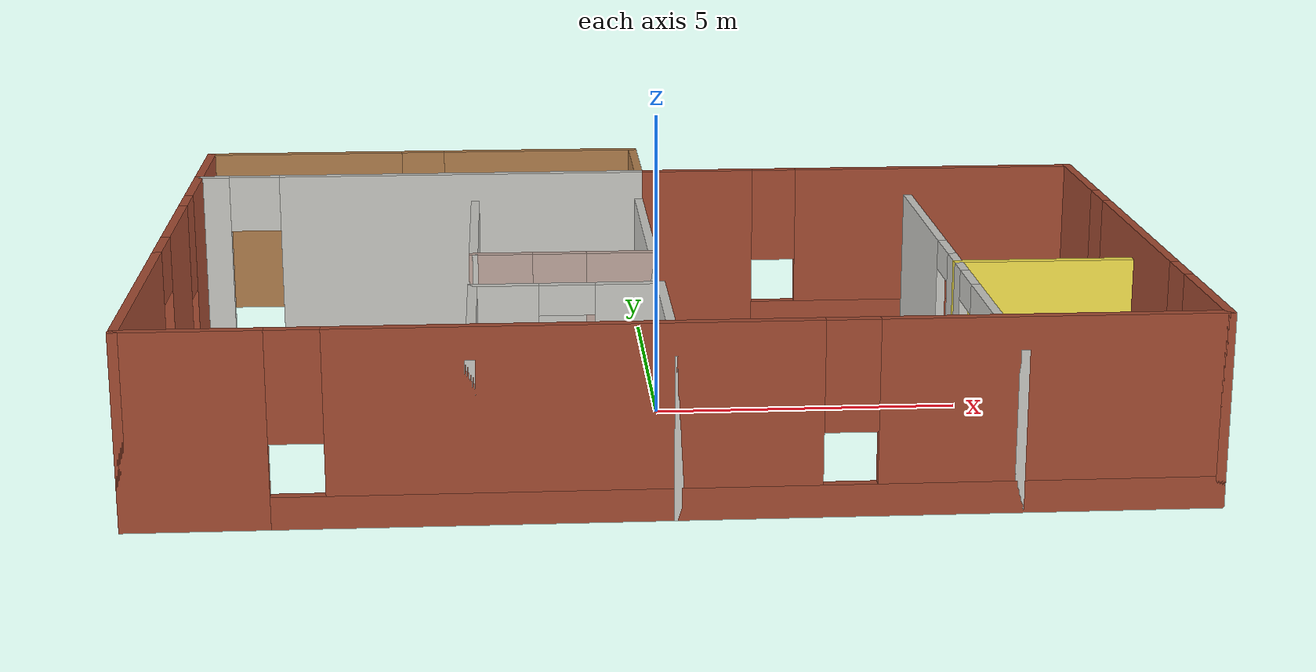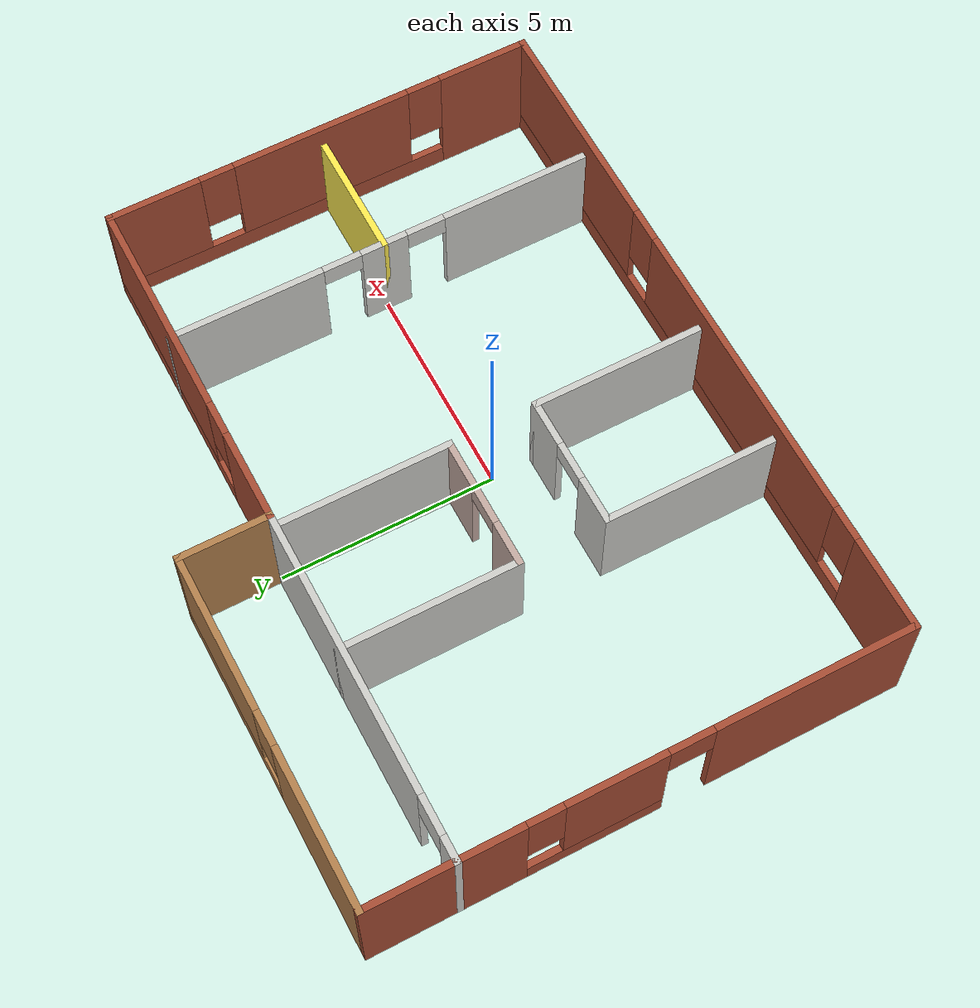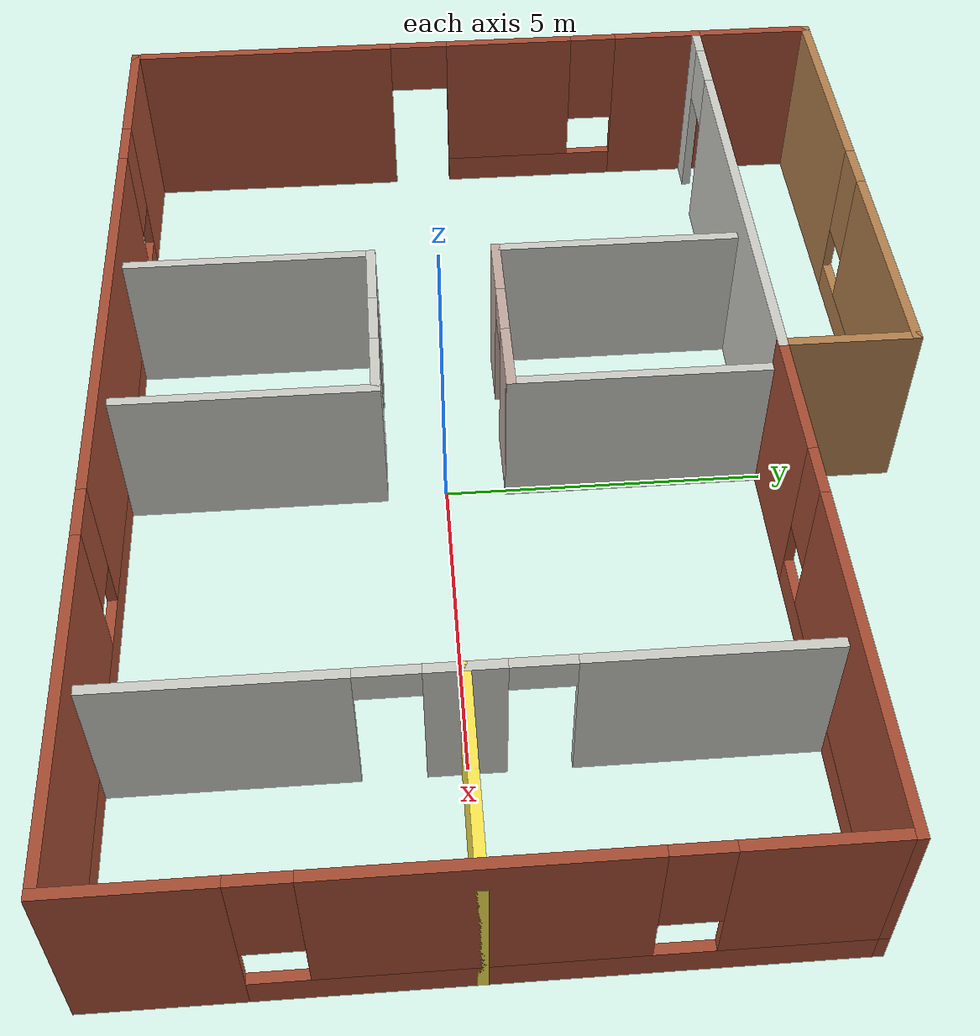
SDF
<?xml version='1.0'?>
<sdf version='1.7'>
  <model name='Project_building'>
    <pose>0 1 0 0 -0 0</pose>
    <link name='Wall_0'>
      <pose>-8 -1 0 0 -0 -1.5708</pose>
      <visual name='Wall_0_Visual_0'>
        <pose>-4.30639 0 1.5 0 -0 0</pose>
        <geometry>
          <box>
            <size>1.53722 0.15 3</size>
          </box>
        </geometry>
        <material>
          <script>
            <uri>file://media/materials/scripts/gazebo.material</uri>
            <name>Gazebo/Bricks</name>
          </script>
          <ambient>1 1 1 1</ambient>
        </material>
        <meta>
          <layer>0</layer>
        </meta>
      </visual>
      <collision name='Wall_0_Collision_0'>
        <geometry>
          <box>
            <size>1.53722 0.15 3</size>
          </box>
        </geometry>
        <pose>-4.30639 0 1.5 0 -0 0</pose>
      </collision>
      <visual name='Wall_0_Visual_1'>
        <pose>2.7875 0 1.5 0 -0 0</pose>
        <geometry>
          <box>
            <size>4.575 0.15 3</size>
          </box>
        </geometry>
        <material>
          <script>
            <uri>file://media/materials/scripts/gazebo.material</uri>
            <name>Gazebo/Bricks</name>
          </script>
          <ambient>1 1 1 1</ambient>
        </material>
        <meta>
          <layer>0</layer>
        </meta>
      </visual>
      <collision name='Wall_0_Collision_1'>
        <geometry>
          <box>
            <size>4.575 0.15 3</size>
          </box>
        </geometry>
        <pose>2.7875 0 1.5 0 -0 0</pose>
      </collision>
      <visual name='Wall_0_Visual_2'>
        <pose>-2.01889 0 0.25 0 -0 0</pose>
        <geometry>
          <box>
            <size>3.03778 0.15 0.5</size>
          </box>
        </geometry>
        <material>
          <script>
            <uri>file://media/materials/scripts/gazebo.material</uri>
            <name>Gazebo/Bricks</name>
          </script>
          <ambient>1 1 1 1</ambient>
        </material>
        <meta>
          <layer>0</layer>
        </meta>
      </visual>
      <collision name='Wall_0_Collision_2'>
        <geometry>
          <box>
            <size>3.03778 0.15 0.5</size>
          </box>
        </geometry>
        <pose>-2.01889 0 0.25 0 -0 0</pose>
      </collision>
      <visual name='Wall_0_Visual_3'>
        <pose>-1.61889 0 1.75 0 -0 0</pose>
        <geometry>
          <box>
            <size>2.23778 0.15 2.5</size>
          </box>
        </geometry>
        <material>
          <script>
            <uri>file://media/materials/scripts/gazebo.material</uri>
            <name>Gazebo/Bricks</name>
          </script>
          <ambient>1 1 1 1</ambient>
        </material>
        <meta>
          <layer>0</layer>
        </meta>
      </visual>
      <collision name='Wall_0_Collision_3'>
        <geometry>
          <box>
            <size>2.23778 0.15 2.5</size>
          </box>
        </geometry>
        <pose>-1.61889 0 1.75 0 -0 0</pose>
      </collision>
      <visual name='Wall_0_Visual_4'>
        <pose>-3.13778 0 2.15 0 -0 0</pose>
        <geometry>
          <box>
            <size>0.8 0.15 1.7</size>
          </box>
        </geometry>
        <material>
          <script>
            <uri>file://media/materials/scripts/gazebo.material</uri>
            <name>Gazebo/Bricks</name>
          </script>
          <ambient>1 1 1 1</ambient>
        </material>
        <meta>
          <layer>0</layer>
        </meta>
      </visual>
      <collision name='Wall_0_Collision_4'>
        <geometry>
          <box>
            <size>0.8 0.15 1.7</size>
          </box>
        </geometry>
        <pose>-3.13778 0 2.15 0 -0 0</pose>
      </collision>
      <visual name='Wall_0_Visual_5'>
        <pose>0 0 2.55 0 -0 0</pose>
        <geometry>
          <box>
            <size>1 0.15 0.9</size>
          </box>
        </geometry>
        <material>
          <script>
            <uri>file://media/materials/scripts/gazebo.material</uri>
            <name>Gazebo/Bricks</name>
          </script>
          <ambient>1 1 1 1</ambient>
        </material>
        <meta>
          <layer>0</layer>
        </meta>
      </visual>
      <collision name='Wall_0_Collision_5'>
        <geometry>
          <box>
            <size>1 0.15 0.9</size>
          </box>
        </geometry>
        <pose>0 0 2.55 0 -0 0</pose>
      </collision>
    </link>
    <link name='Wall_1'>
      <pose>0 -6 0 0 -0 0</pose>
      <visual name='Wall_1_Visual_0'>
        <pose>-6.9875 0 1.5 0 -0 0</pose>
        <geometry>
          <box>
            <size>2.175 0.15 3</size>
          </box>
        </geometry>
        <material>
          <script>
            <uri>file://media/materials/scripts/gazebo.material</uri>
            <name>Gazebo/Bricks</name>
          </script>
          <ambient>1 1 1 1</ambient>
        </material>
        <meta>
          <layer>0</layer>
        </meta>
      </visual>
      <collision name='Wall_1_Collision_0'>
        <geometry>
          <box>
            <size>2.175 0.15 3</size>
          </box>
        </geometry>
        <pose>-6.9875 0 1.5 0 -0 0</pose>
      </collision>
      <visual name='Wall_1_Visual_1'>
        <pose>1.0875 0 0.25 0 -0 0</pose>
        <geometry>
          <box>
            <size>13.975 0.15 0.5</size>
          </box>
        </geometry>
        <material>
          <script>
            <uri>file://media/materials/scripts/gazebo.material</uri>
            <name>Gazebo/Bricks</name>
          </script>
          <ambient>1 1 1 1</ambient>
        </material>
        <meta>
          <layer>0</layer>
        </meta>
      </visual>
      <collision name='Wall_1_Collision_1'>
        <geometry>
          <box>
            <size>13.975 0.15 0.5</size>
          </box>
        </geometry>
        <pose>1.0875 0 0.25 0 -0 0</pose>
      </collision>
      <visual name='Wall_1_Visual_2'>
        <pose>-1.5 0 1.75 0 -0 0</pose>
        <geometry>
          <box>
            <size>7.2 0.15 2.5</size>
          </box>
        </geometry>
        <material>
          <script>
            <uri>file://media/materials/scripts/gazebo.material</uri>
            <name>Gazebo/Bricks</name>
          </script>
          <ambient>1 1 1 1</ambient>
        </material>
        <meta>
          <layer>0</layer>
        </meta>
      </visual>
      <collision name='Wall_1_Collision_2'>
        <geometry>
          <box>
            <size>7.2 0.15 2.5</size>
          </box>
        </geometry>
        <pose>-1.5 0 1.75 0 -0 0</pose>
      </collision>
      <visual name='Wall_1_Visual_3'>
        <pose>5.4875 0 1.75 0 -0 0</pose>
        <geometry>
          <box>
            <size>5.175 0.15 2.5</size>
          </box>
        </geometry>
        <material>
          <script>
            <uri>file://media/materials/scripts/gazebo.material</uri>
            <name>Gazebo/Bricks</name>
          </script>
          <ambient>1 1 1 1</ambient>
        </material>
        <meta>
          <layer>0</layer>
        </meta>
      </visual>
      <collision name='Wall_1_Collision_3'>
        <geometry>
          <box>
            <size>5.175 0.15 2.5</size>
          </box>
        </geometry>
        <pose>5.4875 0 1.75 0 -0 0</pose>
      </collision>
      <visual name='Wall_1_Visual_4'>
        <pose>-5.5 0 2.15 0 -0 0</pose>
        <geometry>
          <box>
            <size>0.8 0.15 1.7</size>
          </box>
        </geometry>
        <material>
          <script>
            <uri>file://media/materials/scripts/gazebo.material</uri>
            <name>Gazebo/Bricks</name>
          </script>
          <ambient>1 1 1 1</ambient>
        </material>
        <meta>
          <layer>0</layer>
        </meta>
      </visual>
      <collision name='Wall_1_Collision_4'>
        <geometry>
          <box>
            <size>0.8 0.15 1.7</size>
          </box>
        </geometry>
        <pose>-5.5 0 2.15 0 -0 0</pose>
      </collision>
      <visual name='Wall_1_Visual_5'>
        <pose>2.5 0 2.15 0 -0 0</pose>
        <geometry>
          <box>
            <size>0.8 0.15 1.7</size>
          </box>
        </geometry>
        <material>
          <script>
            <uri>file://media/materials/scripts/gazebo.material</uri>
            <name>Gazebo/Bricks</name>
          </script>
          <ambient>1 1 1 1</ambient>
        </material>
        <meta>
          <layer>0</layer>
        </meta>
      </visual>
      <collision name='Wall_1_Collision_5'>
        <geometry>
          <box>
            <size>0.8 0.15 1.7</size>
          </box>
        </geometry>
        <pose>2.5 0 2.15 0 -0 0</pose>
      </collision>
    </link>
    <link name='Wall_10'>
      <pose>-1.5 0 0 0 -0 0</pose>
      <visual name='Wall_10_Visual_0'>
        <pose>-1.04354 0 1.25 0 -0 0</pose>
        <geometry>
          <box>
            <size>1.06292 0.15 2.5</size>
          </box>
        </geometry>
        <material>
          <script>
            <uri>file://media/materials/scripts/gazebo.material</uri>
            <name>Gazebo/Grey</name>
          </script>
          <ambient>0.760784 0.662745 0.627451 1</ambient>
        </material>
        <meta>
          <layer>0</layer>
        </meta>
      </visual>
      <collision name='Wall_10_Collision_0'>
        <geometry>
          <box>
            <size>1.06292 0.15 2.5</size>
          </box>
        </geometry>
        <pose>-1.04354 0 1.25 0 -0 0</pose>
      </collision>
      <visual name='Wall_10_Visual_1'>
        <pose>0.981459 0 1.25 0 -0 0</pose>
        <geometry>
          <box>
            <size>1.18708 0.15 2.5</size>
          </box>
        </geometry>
        <material>
          <script>
            <uri>file://media/materials/scripts/gazebo.material</uri>
            <name>Gazebo/Grey</name>
          </script>
          <ambient>0.760784 0.662745 0.627451 1</ambient>
        </material>
        <meta>
          <layer>0</layer>
        </meta>
      </visual>
      <collision name='Wall_10_Collision_1'>
        <geometry>
          <box>
            <size>1.18708 0.15 2.5</size>
          </box>
        </geometry>
        <pose>0.981459 0 1.25 0 -0 0</pose>
      </collision>
      <visual name='Wall_10_Visual_2'>
        <pose>-0.062083 0 2.25 0 -0 0</pose>
        <geometry>
          <box>
            <size>0.9 0.15 0.5</size>
          </box>
        </geometry>
        <material>
          <script>
            <uri>file://media/materials/scripts/gazebo.material</uri>
            <name>Gazebo/Grey</name>
          </script>
          <ambient>0.760784 0.662745 0.627451 1</ambient>
        </material>
        <meta>
          <layer>0</layer>
        </meta>
      </visual>
      <collision name='Wall_10_Collision_2'>
        <geometry>
          <box>
            <size>0.9 0.15 0.5</size>
          </box>
        </geometry>
        <pose>-0.062083 0 2.25 0 -0 0</pose>
      </collision>
    </link>
    <link name='Wall_11'>
      <collision name='Wall_11_Collision'>
        <geometry>
          <box>
            <size>4.15 0.15 2.5</size>
          </box>
        </geometry>
        <pose>0 0 1.25 0 -0 0</pose>
      </collision>
      <visual name='Wall_11_Visual'>
        <pose>0 0 1.25 0 -0 0</pose>
        <geometry>
          <box>
            <size>4.15 0.15 2.5</size>
          </box>
        </geometry>
        <material>
          <script>
            <uri>file://media/materials/scripts/gazebo.material</uri>
            <name>Gazebo/CeilingTiled</name>
          </script>
          <ambient>0.760784 0.662745 0.627451 1</ambient>
        </material>
        <meta>
          <layer>0</layer>
        </meta>
      </visual>
      <pose>0 2 0 0 -0 1.5708</pose>
    </link>
    <link name='Wall_13'>
      <collision name='Wall_13_Collision'>
        <geometry>
          <box>
            <size>4.15 0.15 2.5</size>
          </box>
        </geometry>
        <pose>0 0 1.25 0 -0 0</pose>
      </collision>
      <visual name='Wall_13_Visual'>
        <pose>0 0 1.25 0 -0 0</pose>
        <geometry>
          <box>
            <size>4.15 0.15 2.5</size>
          </box>
        </geometry>
        <material>
          <script>
            <uri>file://media/materials/scripts/gazebo.material</uri>
            <name>Gazebo/CeilingTiled</name>
          </script>
          <ambient>0.760784 0.662745 0.627451 1</ambient>
        </material>
        <meta>
          <layer>0</layer>
        </meta>
      </visual>
      <pose>-3 -4 0 0 -0 1.5708</pose>
    </link>
    <link name='Wall_14'>
      <pose>-1.5 -2 0 0 -0 0</pose>
      <visual name='Wall_14_Visual_0'>
        <pose>-1.0125 0 1.25 0 -0 0</pose>
        <geometry>
          <box>
            <size>1.125 0.15 2.5</size>
          </box>
        </geometry>
        <material>
          <script>
            <uri>file://media/materials/scripts/gazebo.material</uri>
            <name>Gazebo/CeilingTiled</name>
          </script>
          <ambient>0.760784 0.662745 0.627451 1</ambient>
        </material>
        <meta>
          <layer>0</layer>
        </meta>
      </visual>
      <collision name='Wall_14_Collision_0'>
        <geometry>
          <box>
            <size>1.125 0.15 2.5</size>
          </box>
        </geometry>
        <pose>-1.0125 0 1.25 0 -0 0</pose>
      </collision>
      <visual name='Wall_14_Visual_1'>
        <pose>1.0125 0 1.25 0 -0 0</pose>
        <geometry>
          <box>
            <size>1.125 0.15 2.5</size>
          </box>
        </geometry>
        <material>
          <script>
            <uri>file://media/materials/scripts/gazebo.material</uri>
            <name>Gazebo/CeilingTiled</name>
          </script>
          <ambient>0.760784 0.662745 0.627451 1</ambient>
        </material>
        <meta>
          <layer>0</layer>
        </meta>
      </visual>
      <collision name='Wall_14_Collision_1'>
        <geometry>
          <box>
            <size>1.125 0.15 2.5</size>
          </box>
        </geometry>
        <pose>1.0125 0 1.25 0 -0 0</pose>
      </collision>
      <visual name='Wall_14_Visual_2'>
        <pose>0 0 2.25 0 -0 0</pose>
        <geometry>
          <box>
            <size>0.9 0.15 0.5</size>
          </box>
        </geometry>
        <material>
          <script>
            <uri>file://media/materials/scripts/gazebo.material</uri>
            <name>Gazebo/CeilingTiled</name>
          </script>
          <ambient>0.760784 0.662745 0.627451 1</ambient>
        </material>
        <meta>
          <layer>0</layer>
        </meta>
      </visual>
      <collision name='Wall_14_Collision_2'>
        <geometry>
          <box>
            <size>0.9 0.15 0.5</size>
          </box>
        </geometry>
        <pose>0 0 2.25 0 -0 0</pose>
      </collision>
    </link>
    <link name='Wall_15'>
      <collision name='Wall_15_Collision'>
        <geometry>
          <box>
            <size>4.15 0.15 2.5</size>
          </box>
        </geometry>
        <pose>0 0 1.25 0 -0 0</pose>
      </collision>
      <visual name='Wall_15_Visual'>
        <pose>0 0 1.25 0 -0 0</pose>
        <geometry>
          <box>
            <size>4.15 0.15 2.5</size>
          </box>
        </geometry>
        <material>
          <script>
            <uri>file://media/materials/scripts/gazebo.material</uri>
            <name>Gazebo/CeilingTiled</name>
          </script>
          <ambient>0.760784 0.662745 0.627451 1</ambient>
        </material>
        <meta>
          <layer>0</layer>
        </meta>
      </visual>
      <pose>0 -4 0 0 -0 -1.5708</pose>
    </link>
    <link name='Wall_18'>
      <collision name='Wall_18_Collision'>
        <geometry>
          <box>
            <size>2.15 0.15 3</size>
          </box>
        </geometry>
        <pose>0 0 1.5 0 -0 0</pose>
      </collision>
      <visual name='Wall_18_Visual'>
        <pose>0 0 1.5 0 -0 0</pose>
        <geometry>
          <box>
            <size>2.15 0.15 3</size>
          </box>
        </geometry>
        <material>
          <script>
            <uri>file://media/materials/scripts/gazebo.material</uri>
            <name>Gazebo/Bricks</name>
          </script>
          <ambient>1 1 1 1</ambient>
        </material>
        <meta>
          <layer>0</layer>
        </meta>
      </visual>
      <pose>-8 5 0 0 -0 1.5708</pose>
    </link>
    <link name='Wall_19'>
      <pose>-4 6 0 0 -0 0</pose>
      <visual name='Wall_19_Visual_0'>
        <pose>-2.2375 0 1.5 0 -0 0</pose>
        <geometry>
          <box>
            <size>3.675 0.15 3</size>
          </box>
        </geometry>
        <material>
          <script>
            <uri>file://media/materials/scripts/gazebo.material</uri>
            <name>Gazebo/Wood</name>
          </script>
          <ambient>1 1 1 1</ambient>
        </material>
        <meta>
          <layer>0</layer>
        </meta>
      </visual>
      <collision name='Wall_19_Collision_0'>
        <geometry>
          <box>
            <size>3.675 0.15 3</size>
          </box>
        </geometry>
        <pose>-2.2375 0 1.5 0 -0 0</pose>
      </collision>
      <visual name='Wall_19_Visual_1'>
        <pose>1.8375 0 0.25 0 -0 0</pose>
        <geometry>
          <box>
            <size>4.475 0.15 0.5</size>
          </box>
        </geometry>
        <material>
          <script>
            <uri>file://media/materials/scripts/gazebo.material</uri>
            <name>Gazebo/Wood</name>
          </script>
          <ambient>1 1 1 1</ambient>
        </material>
        <meta>
          <layer>0</layer>
        </meta>
      </visual>
      <collision name='Wall_19_Collision_1'>
        <geometry>
          <box>
            <size>4.475 0.15 0.5</size>
          </box>
        </geometry>
        <pose>1.8375 0 0.25 0 -0 0</pose>
      </collision>
      <visual name='Wall_19_Visual_2'>
        <pose>2.2375 0 1.75 0 -0 0</pose>
        <geometry>
          <box>
            <size>3.675 0.15 2.5</size>
          </box>
        </geometry>
        <material>
          <script>
            <uri>file://media/materials/scripts/gazebo.material</uri>
            <name>Gazebo/Wood</name>
          </script>
          <ambient>1 1 1 1</ambient>
        </material>
        <meta>
          <layer>0</layer>
        </meta>
      </visual>
      <collision name='Wall_19_Collision_2'>
        <geometry>
          <box>
            <size>3.675 0.15 2.5</size>
          </box>
        </geometry>
        <pose>2.2375 0 1.75 0 -0 0</pose>
      </collision>
      <visual name='Wall_19_Visual_3'>
        <pose>0 0 2.15 0 -0 0</pose>
        <geometry>
          <box>
            <size>0.8 0.15 1.7</size>
          </box>
        </geometry>
        <material>
          <script>
            <uri>file://media/materials/scripts/gazebo.material</uri>
            <name>Gazebo/Wood</name>
          </script>
          <ambient>1 1 1 1</ambient>
        </material>
        <meta>
          <layer>0</layer>
        </meta>
      </visual>
      <collision name='Wall_19_Collision_3'>
        <geometry>
          <box>
            <size>0.8 0.15 1.7</size>
          </box>
        </geometry>
        <pose>0 0 2.15 0 -0 0</pose>
      </collision>
    </link>
    <link name='Wall_2'>
      <pose>8 -1 0 0 -0 1.5708</pose>
      <visual name='Wall_2_Visual_0'>
        <pose>-3.9875 0 1.5 0 -0 0</pose>
        <geometry>
          <box>
            <size>2.175 0.15 3</size>
          </box>
        </geometry>
        <material>
          <script>
            <uri>file://media/materials/scripts/gazebo.material</uri>
            <name>Gazebo/Bricks</name>
          </script>
          <ambient>1 1 1 1</ambient>
        </material>
        <meta>
          <layer>0</layer>
        </meta>
      </visual>
      <collision name='Wall_2_Collision_0'>
        <geometry>
          <box>
            <size>2.175 0.15 3</size>
          </box>
        </geometry>
        <pose>-3.9875 0 1.5 0 -0 0</pose>
      </collision>
      <visual name='Wall_2_Visual_1'>
        <pose>1.0875 0 0.25 0 -0 0</pose>
        <geometry>
          <box>
            <size>7.975 0.15 0.5</size>
          </box>
        </geometry>
        <material>
          <script>
            <uri>file://media/materials/scripts/gazebo.material</uri>
            <name>Gazebo/Bricks</name>
          </script>
          <ambient>1 1 1 1</ambient>
        </material>
        <meta>
          <layer>0</layer>
        </meta>
      </visual>
      <collision name='Wall_2_Collision_1'>
        <geometry>
          <box>
            <size>7.975 0.15 0.5</size>
          </box>
        </geometry>
        <pose>1.0875 0 0.25 0 -0 0</pose>
      </collision>
      <visual name='Wall_2_Visual_2'>
        <pose>0 0 1.75 0 -0 0</pose>
        <geometry>
          <box>
            <size>4.2 0.15 2.5</size>
          </box>
        </geometry>
        <material>
          <script>
            <uri>file://media/materials/scripts/gazebo.material</uri>
            <name>Gazebo/Bricks</name>
          </script>
          <ambient>1 1 1 1</ambient>
        </material>
        <meta>
          <layer>0</layer>
        </meta>
      </visual>
      <collision name='Wall_2_Collision_2'>
        <geometry>
          <box>
            <size>4.2 0.15 2.5</size>
          </box>
        </geometry>
        <pose>0 0 1.75 0 -0 0</pose>
      </collision>
      <visual name='Wall_2_Visual_3'>
        <pose>3.9875 0 1.75 0 -0 0</pose>
        <geometry>
          <box>
            <size>2.175 0.15 2.5</size>
          </box>
        </geometry>
        <material>
          <script>
            <uri>file://media/materials/scripts/gazebo.material</uri>
            <name>Gazebo/Bricks</name>
          </script>
          <ambient>1 1 1 1</ambient>
        </material>
        <meta>
          <layer>0</layer>
        </meta>
      </visual>
      <collision name='Wall_2_Collision_3'>
        <geometry>
          <box>
            <size>2.175 0.15 2.5</size>
          </box>
        </geometry>
        <pose>3.9875 0 1.75 0 -0 0</pose>
      </collision>
      <visual name='Wall_2_Visual_4'>
        <pose>-2.5 0 2.15 0 -0 0</pose>
        <geometry>
          <box>
            <size>0.8 0.15 1.7</size>
          </box>
        </geometry>
        <material>
          <script>
            <uri>file://media/materials/scripts/gazebo.material</uri>
            <name>Gazebo/Bricks</name>
          </script>
          <ambient>1 1 1 1</ambient>
        </material>
        <meta>
          <layer>0</layer>
        </meta>
      </visual>
      <collision name='Wall_2_Collision_4'>
        <geometry>
          <box>
            <size>0.8 0.15 1.7</size>
          </box>
        </geometry>
        <pose>-2.5 0 2.15 0 -0 0</pose>
      </collision>
      <visual name='Wall_2_Visual_5'>
        <pose>2.5 0 2.15 0 -0 0</pose>
        <geometry>
          <box>
            <size>0.8 0.15 1.7</size>
          </box>
        </geometry>
        <material>
          <script>
            <uri>file://media/materials/scripts/gazebo.material</uri>
            <name>Gazebo/Bricks</name>
          </script>
          <ambient>1 1 1 1</ambient>
        </material>
        <meta>
          <layer>0</layer>
        </meta>
      </visual>
      <collision name='Wall_2_Collision_5'>
        <geometry>
          <box>
            <size>0.8 0.15 1.7</size>
          </box>
        </geometry>
        <pose>2.5 0 2.15 0 -0 0</pose>
      </collision>
    </link>
    <link name='Wall_20'>
      <collision name='Wall_20_Collision'>
        <geometry>
          <box>
            <size>2.15 0.15 3</size>
          </box>
        </geometry>
        <pose>0 0 1.5 0 -0 0</pose>
      </collision>
      <visual name='Wall_20_Visual'>
        <pose>0 0 1.5 0 -0 0</pose>
        <geometry>
          <box>
            <size>2.15 0.15 3</size>
          </box>
        </geometry>
        <material>
          <script>
            <uri>file://media/materials/scripts/gazebo.material</uri>
            <name>Gazebo/Wood</name>
          </script>
          <ambient>1 1 1 1</ambient>
        </material>
        <meta>
          <layer>0</layer>
        </meta>
      </visual>
      <pose>0 5 0 0 -0 -1.5708</pose>
    </link>
    <link name='Wall_22'>
      <pose>-4 4 0 0 -0 0</pose>
      <visual name='Wall_22_Visual_0'>
        <pose>-3.7625 0 1.5 0 -0 0</pose>
        <geometry>
          <box>
            <size>0.625 0.15 3</size>
          </box>
        </geometry>
        <material>
          <script>
            <uri>file://media/materials/scripts/gazebo.material</uri>
            <name>Gazebo/CeilingTiled</name>
          </script>
          <ambient>1 1 1 1</ambient>
        </material>
        <meta>
          <layer>0</layer>
        </meta>
      </visual>
      <collision name='Wall_22_Collision_0'>
        <geometry>
          <box>
            <size>0.625 0.15 3</size>
          </box>
        </geometry>
        <pose>-3.7625 0 1.5 0 -0 0</pose>
      </collision>
      <visual name='Wall_22_Visual_1'>
        <pose>0.7625 0 1.5 0 -0 0</pose>
        <geometry>
          <box>
            <size>6.625 0.15 3</size>
          </box>
        </geometry>
        <material>
          <script>
            <uri>file://media/materials/scripts/gazebo.material</uri>
            <name>Gazebo/CeilingTiled</name>
          </script>
          <ambient>1 1 1 1</ambient>
        </material>
        <meta>
          <layer>0</layer>
        </meta>
      </visual>
      <collision name='Wall_22_Collision_1'>
        <geometry>
          <box>
            <size>6.625 0.15 3</size>
          </box>
        </geometry>
        <pose>0.7625 0 1.5 0 -0 0</pose>
      </collision>
      <visual name='Wall_22_Visual_2'>
        <pose>-3 0 2.5 0 -0 0</pose>
        <geometry>
          <box>
            <size>0.9 0.15 1</size>
          </box>
        </geometry>
        <material>
          <script>
            <uri>file://media/materials/scripts/gazebo.material</uri>
            <name>Gazebo/CeilingTiled</name>
          </script>
          <ambient>1 1 1 1</ambient>
        </material>
        <meta>
          <layer>0</layer>
        </meta>
      </visual>
      <collision name='Wall_22_Collision_2'>
        <geometry>
          <box>
            <size>0.9 0.15 1</size>
          </box>
        </geometry>
        <pose>-3 0 2.5 0 -0 0</pose>
      </collision>
    </link>
    <link name='Wall_23'>
      <pose>4 4 0 0 -0 0</pose>
      <visual name='Wall_23_Visual_0'>
        <pose>-2.9875 0 1.5 0 -0 0</pose>
        <geometry>
          <box>
            <size>2.175 0.15 3</size>
          </box>
        </geometry>
        <material>
          <script>
            <uri>file://media/materials/scripts/gazebo.material</uri>
            <name>Gazebo/Bricks</name>
          </script>
          <ambient>1 1 1 1</ambient>
        </material>
        <meta>
          <layer>0</layer>
        </meta>
      </visual>
      <collision name='Wall_23_Collision_0'>
        <geometry>
          <box>
            <size>2.175 0.15 3</size>
          </box>
        </geometry>
        <pose>-2.9875 0 1.5 0 -0 0</pose>
      </collision>
      <visual name='Wall_23_Visual_1'>
        <pose>1.0875 0 0.25 0 -0 0</pose>
        <geometry>
          <box>
            <size>5.975 0.15 0.5</size>
          </box>
        </geometry>
        <material>
          <script>
            <uri>file://media/materials/scripts/gazebo.material</uri>
            <name>Gazebo/Bricks</name>
          </script>
          <ambient>1 1 1 1</ambient>
        </material>
        <meta>
          <layer>0</layer>
        </meta>
      </visual>
      <collision name='Wall_23_Collision_1'>
        <geometry>
          <box>
            <size>5.975 0.15 0.5</size>
          </box>
        </geometry>
        <pose>1.0875 0 0.25 0 -0 0</pose>
      </collision>
      <visual name='Wall_23_Visual_2'>
        <pose>1.4875 0 1.75 0 -0 0</pose>
        <geometry>
          <box>
            <size>5.175 0.15 2.5</size>
          </box>
        </geometry>
        <material>
          <script>
            <uri>file://media/materials/scripts/gazebo.material</uri>
            <name>Gazebo/Bricks</name>
          </script>
          <ambient>1 1 1 1</ambient>
        </material>
        <meta>
          <layer>0</layer>
        </meta>
      </visual>
      <collision name='Wall_23_Collision_2'>
        <geometry>
          <box>
            <size>5.175 0.15 2.5</size>
          </box>
        </geometry>
        <pose>1.4875 0 1.75 0 -0 0</pose>
      </collision>
      <visual name='Wall_23_Visual_3'>
        <pose>-1.5 0 2.15 0 -0 0</pose>
        <geometry>
          <box>
            <size>0.8 0.15 1.7</size>
          </box>
        </geometry>
        <material>
          <script>
            <uri>file://media/materials/scripts/gazebo.material</uri>
            <name>Gazebo/Bricks</name>
          </script>
          <ambient>1 1 1 1</ambient>
        </material>
        <meta>
          <layer>0</layer>
        </meta>
      </visual>
      <collision name='Wall_23_Collision_3'>
        <geometry>
          <box>
            <size>0.8 0.15 1.7</size>
          </box>
        </geometry>
        <pose>-1.5 0 2.15 0 -0 0</pose>
      </collision>
    </link>
    <link name='Wall_5'>
      <pose>5 -1 0 0 -0 -1.5708</pose>
      <visual name='Wall_5_Visual_0'>
        <pose>-3.2625 0 1.25 0 -0 0</pose>
        <geometry>
          <box>
            <size>3.625 0.15 2.5</size>
          </box>
        </geometry>
        <material>
          <script>
            <uri>file://media/materials/scripts/gazebo.material</uri>
            <name>Gazebo/CeilingTiled</name>
          </script>
          <ambient>1 1 1 1</ambient>
        </material>
        <meta>
          <layer>0</layer>
        </meta>
      </visual>
      <collision name='Wall_5_Collision_0'>
        <geometry>
          <box>
            <size>3.625 0.15 2.5</size>
          </box>
        </geometry>
        <pose>-3.2625 0 1.25 0 -0 0</pose>
      </collision>
      <visual name='Wall_5_Visual_1'>
        <pose>0 0 1.25 0 -0 0</pose>
        <geometry>
          <box>
            <size>1.1 0.15 2.5</size>
          </box>
        </geometry>
        <material>
          <script>
            <uri>file://media/materials/scripts/gazebo.material</uri>
            <name>Gazebo/CeilingTiled</name>
          </script>
          <ambient>1 1 1 1</ambient>
        </material>
        <meta>
          <layer>0</layer>
        </meta>
      </visual>
      <collision name='Wall_5_Collision_1'>
        <geometry>
          <box>
            <size>1.1 0.15 2.5</size>
          </box>
        </geometry>
        <pose>0 0 1.25 0 -0 0</pose>
      </collision>
      <visual name='Wall_5_Visual_2'>
        <pose>3.2625 0 1.25 0 -0 0</pose>
        <geometry>
          <box>
            <size>3.625 0.15 2.5</size>
          </box>
        </geometry>
        <material>
          <script>
            <uri>file://media/materials/scripts/gazebo.material</uri>
            <name>Gazebo/CeilingTiled</name>
          </script>
          <ambient>1 1 1 1</ambient>
        </material>
        <meta>
          <layer>0</layer>
        </meta>
      </visual>
      <collision name='Wall_5_Collision_2'>
        <geometry>
          <box>
            <size>3.625 0.15 2.5</size>
          </box>
        </geometry>
        <pose>3.2625 0 1.25 0 -0 0</pose>
      </collision>
      <visual name='Wall_5_Visual_3'>
        <pose>-1 0 2.25 0 -0 0</pose>
        <geometry>
          <box>
            <size>0.9 0.15 0.5</size>
          </box>
        </geometry>
        <material>
          <script>
            <uri>file://media/materials/scripts/gazebo.material</uri>
            <name>Gazebo/CeilingTiled</name>
          </script>
          <ambient>1 1 1 1</ambient>
        </material>
        <meta>
          <layer>0</layer>
        </meta>
      </visual>
      <collision name='Wall_5_Collision_3'>
        <geometry>
          <box>
            <size>0.9 0.15 0.5</size>
          </box>
        </geometry>
        <pose>-1 0 2.25 0 -0 0</pose>
      </collision>
      <visual name='Wall_5_Visual_4'>
        <pose>1 0 2.25 0 -0 0</pose>
        <geometry>
          <box>
            <size>0.9 0.15 0.5</size>
          </box>
        </geometry>
        <material>
          <script>
            <uri>file://media/materials/scripts/gazebo.material</uri>
            <name>Gazebo/CeilingTiled</name>
          </script>
          <ambient>1 1 1 1</ambient>
        </material>
        <meta>
          <layer>0</layer>
        </meta>
      </visual>
      <collision name='Wall_5_Collision_4'>
        <geometry>
          <box>
            <size>0.9 0.15 0.5</size>
          </box>
        </geometry>
        <pose>1 0 2.25 0 -0 0</pose>
      </collision>
    </link>
    <link name='Wall_7'>
      <collision name='Wall_7_Collision'>
        <geometry>
          <box>
            <size>3.15 0.15 2.5</size>
          </box>
        </geometry>
        <pose>0 0 1.25 0 -0 0</pose>
      </collision>
      <visual name='Wall_7_Visual'>
        <pose>0 0 1.25 0 -0 0</pose>
        <geometry>
          <box>
            <size>3.15 0.15 2.5</size>
          </box>
        </geometry>
        <material>
          <script>
            <uri>file://media/materials/scripts/gazebo.material</uri>
            <name>Gazebo/Grey</name>
          </script>
          <ambient>0.988235 0.913725 0.309804 1</ambient>
        </material>
        <meta>
          <layer>0</layer>
        </meta>
      </visual>
      <pose>6.5 -1 0 0 -0 3.14159</pose>
    </link>
    <link name='Wall_9'>
      <collision name='Wall_9_Collision'>
        <geometry>
          <box>
            <size>4.15 0.15 2.5</size>
          </box>
        </geometry>
        <pose>0 0 1.25 0 -0 0</pose>
      </collision>
      <visual name='Wall_9_Visual'>
        <pose>0 0 1.25 0 -0 0</pose>
        <geometry>
          <box>
            <size>4.15 0.15 2.5</size>
          </box>
        </geometry>
        <material>
          <script>
            <uri>file://media/materials/scripts/gazebo.material</uri>
            <name>Gazebo/CeilingTiled</name>
          </script>
          <ambient>0.760784 0.662745 0.627451 1</ambient>
        </material>
        <meta>
          <layer>0</layer>
        </meta>
      </visual>
      <pose>-3 2 0 0 -0 -1.5708</pose>
    </link>
    <static>1</static>
  </model>
</sdf>
